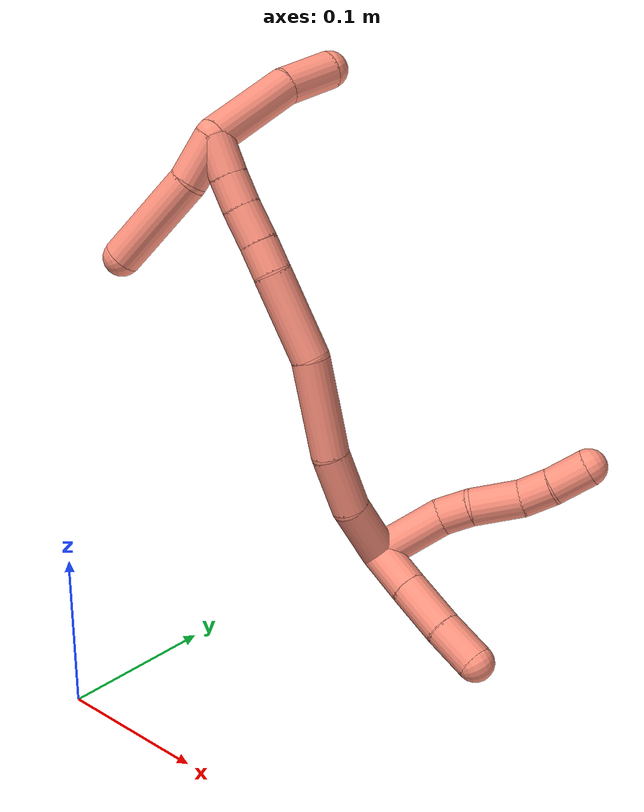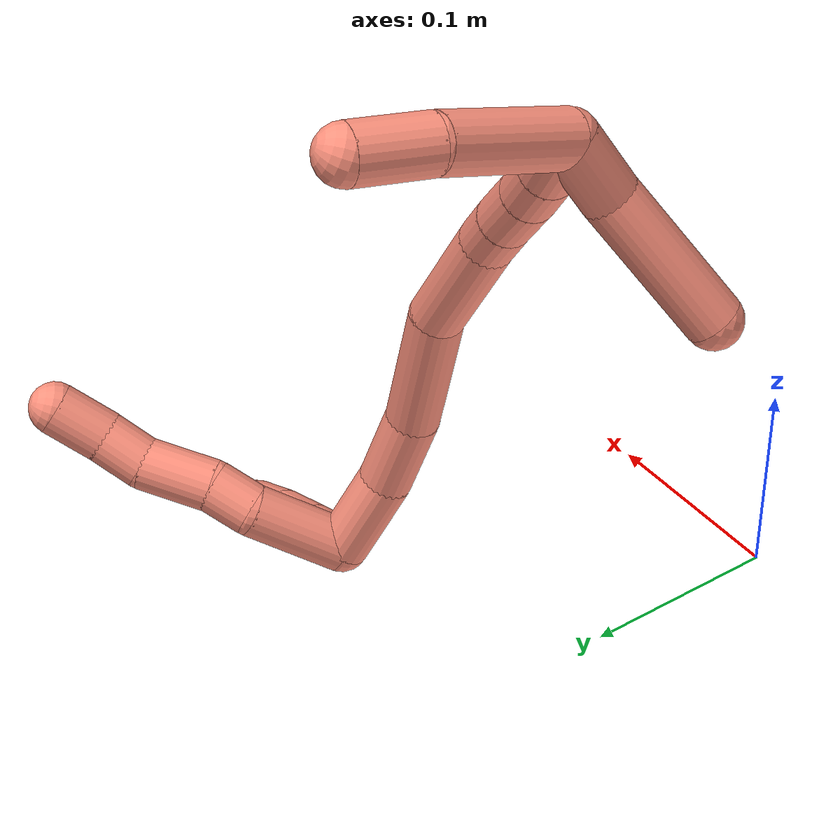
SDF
<sdf version="1.7">
 <world name="default">
  <model name="16">
   <static>0</static>
   <link name="16">
    <collision name="collision-cylinder-e_1_2_8">
     <pose>-0.003193 -0.000448 -0.023196 3.1223 -0.136762 -2.86177</pose>
     <geometry><cylinder><radius>0.0125</radius><length>0.046838</length></cylinder></geometry>
     <surface>
      <friction><ode><mu>1.16</mu><mu2>1.16</mu2><slip1>0</slip1><slip2>0</slip2></ode></friction>
      <contact><ode><kp>1e+06</kp><kd>1</kd><max_vel>0</max_vel><min_depth>0.001</min_depth></ode></contact>
     </surface>
    </collision>
    <visual name="visual-cylinder-e_1_2_8">
     <pose>-0.003193 -0.000448 -0.023196 3.1223 -0.136762 -2.86177</pose>
     <geometry><cylinder><radius>0.0125</radius><length>0.046838</length></cylinder></geometry>
     <material><ambient>1 0.576471 0.494118 1</ambient></material>
    </visual>
    <collision name="collision-cylinder-e_2_8_9">
     <pose>-0.010512 0.001 -0.055985 -2.94651 -0.399312 2.24075</pose>
     <geometry><cylinder><radius>0.0125</radius><length>0.021226</length></cylinder></geometry>
     <surface>
      <friction><ode><mu>1.16</mu><mu2>1.16</mu2><slip1>0</slip1><slip2>0</slip2></ode></friction>
      <contact><ode><kp>1e+06</kp><kd>1</kd><max_vel>0</max_vel><min_depth>0.001</min_depth></ode></contact>
     </surface>
    </collision>
    <visual name="visual-cylinder-e_2_8_9">
     <pose>-0.010512 0.001 -0.055985 -2.94651 -0.399312 2.24075</pose>
     <geometry><cylinder><radius>0.0125</radius><length>0.021226</length></cylinder></geometry>
     <material><ambient>1 0.576471 0.494118 1</ambient></material>
    </visual>
    <collision name="collision-cylinder-e_3_9_10">
     <pose>-0.018019 0.008251 -0.081208 -2.81155 -0.201826 1.09258</pose>
     <geometry><cylinder><radius>0.0125</radius><length>0.033729</length></cylinder></geometry>
     <surface>
      <friction><ode><mu>1.16</mu><mu2>1.16</mu2><slip1>0</slip1><slip2>0</slip2></ode></friction>
      <contact><ode><kp>1e+06</kp><kd>1</kd><max_vel>0</max_vel><min_depth>0.001</min_depth></ode></contact>
     </surface>
    </collision>
    <visual name="visual-cylinder-e_3_9_10">
     <pose>-0.018019 0.008251 -0.081208 -2.81155 -0.201826 1.09258</pose>
     <geometry><cylinder><radius>0.0125</radius><length>0.033729</length></cylinder></geometry>
     <material><ambient>1 0.576471 0.494118 1</ambient></material>
    </visual>
    <collision name="collision-cylinder-e_4_10_11">
     <pose>-0.025816 0.0148 -0.1068 -3.02222 -0.414668 2.58804</pose>
     <geometry><cylinder><radius>0.0125</radius><length>0.021923</length></cylinder></geometry>
     <surface>
      <friction><ode><mu>1.16</mu><mu2>1.16</mu2><slip1>0</slip1><slip2>0</slip2></ode></friction>
      <contact><ode><kp>1e+06</kp><kd>1</kd><max_vel>0</max_vel><min_depth>0.001</min_depth></ode></contact>
     </surface>
    </collision>
    <visual name="visual-cylinder-e_4_10_11">
     <pose>-0.025816 0.0148 -0.1068 -3.02222 -0.414668 2.58804</pose>
     <geometry><cylinder><radius>0.0125</radius><length>0.021923</length></cylinder></geometry>
     <material><ambient>1 0.576471 0.494118 1</ambient></material>
    </visual>
    <collision name="collision-cylinder-e_5_11_6">
     <pose>-0.034212 0.016129 -0.129285 -3.13087 -0.307673 3.07245</pose>
     <geometry><cylinder><radius>0.0125</radius><length>0.026283</length></cylinder></geometry>
     <surface>
      <friction><ode><mu>1.16</mu><mu2>1.16</mu2><slip1>0</slip1><slip2>0</slip2></ode></friction>
      <contact><ode><kp>1e+06</kp><kd>1</kd><max_vel>0</max_vel><min_depth>0.001</min_depth></ode></contact>
     </surface>
    </collision>
    <visual name="visual-cylinder-e_5_11_6">
     <pose>-0.034212 0.016129 -0.129285 -3.13087 -0.307673 3.07245</pose>
     <geometry><cylinder><radius>0.0125</radius><length>0.026283</length></cylinder></geometry>
     <material><ambient>1 0.576471 0.494118 1</ambient></material>
    </visual>
    <collision name="collision-cylinder-e_1_2_12">
     <pose>-0.007201 0.014676 -0.002184 -1.71854 -0.45186 0.521071</pose>
     <geometry><cylinder><radius>0.0125</radius><length>0.032985</length></cylinder></geometry>
     <surface>
      <friction><ode><mu>1.16</mu><mu2>1.16</mu2><slip1>0</slip1><slip2>0</slip2></ode></friction>
      <contact><ode><kp>1e+06</kp><kd>1</kd><max_vel>0</max_vel><min_depth>0.001</min_depth></ode></contact>
     </surface>
    </collision>
    <visual name="visual-cylinder-e_1_2_12">
     <pose>-0.007201 0.014676 -0.002184 -1.71854 -0.45186 0.521071</pose>
     <geometry><cylinder><radius>0.0125</radius><length>0.032985</length></cylinder></geometry>
     <material><ambient>1 0.576471 0.494118 1</ambient></material>
    </visual>
    <collision name="collision-cylinder-e_2_12_13">
     <pose>-0.022042 0.045615 -0.007151 -1.74026 -0.433619 0.510911</pose>
     <geometry><cylinder><radius>0.0125</radius><length>0.036365</length></cylinder></geometry>
     <surface>
      <friction><ode><mu>1.16</mu><mu2>1.16</mu2><slip1>0</slip1><slip2>0</slip2></ode></friction>
      <contact><ode><kp>1e+06</kp><kd>1</kd><max_vel>0</max_vel><min_depth>0.001</min_depth></ode></contact>
     </surface>
    </collision>
    <visual name="visual-cylinder-e_2_12_13">
     <pose>-0.022042 0.045615 -0.007151 -1.74026 -0.433619 0.510911</pose>
     <geometry><cylinder><radius>0.0125</radius><length>0.036365</length></cylinder></geometry>
     <material><ambient>1 0.576471 0.494118 1</ambient></material>
    </visual>
    <collision name="collision-cylinder-e_3_13_5">
     <pose>-0.03539 0.07573 -0.013156 -1.79937 -0.3817 0.47734</pose>
     <geometry><cylinder><radius>0.0125</radius><length>0.030649</length></cylinder></geometry>
     <surface>
      <friction><ode><mu>1.16</mu><mu2>1.16</mu2><slip1>0</slip1><slip2>0</slip2></ode></friction>
      <contact><ode><kp>1e+06</kp><kd>1</kd><max_vel>0</max_vel><min_depth>0.001</min_depth></ode></contact>
     </surface>
    </collision>
    <visual name="visual-cylinder-e_3_13_5">
     <pose>-0.03539 0.07573 -0.013156 -1.79937 -0.3817 0.47734</pose>
     <geometry><cylinder><radius>0.0125</radius><length>0.030649</length></cylinder></geometry>
     <material><ambient>1 0.576471 0.494118 1</ambient></material>
    </visual>
    <collision name="collision-cylinder-e_1_2_14">
     <pose>-0.012002 -0.017617 0.002282 1.44197 -0.594177 -0.525647</pose>
     <geometry><cylinder><radius>0.0125</radius><length>0.042877</length></cylinder></geometry>
     <surface>
      <friction><ode><mu>1.16</mu><mu2>1.16</mu2><slip1>0</slip1><slip2>0</slip2></ode></friction>
      <contact><ode><kp>1e+06</kp><kd>1</kd><max_vel>0</max_vel><min_depth>0.001</min_depth></ode></contact>
     </surface>
    </collision>
    <visual name="visual-cylinder-e_1_2_14">
     <pose>-0.012002 -0.017617 0.002282 1.44197 -0.594177 -0.525647</pose>
     <geometry><cylinder><radius>0.0125</radius><length>0.042877</length></cylinder></geometry>
     <material><ambient>1 0.576471 0.494118 1</ambient></material>
    </visual>
    <collision name="collision-cylinder-e_2_14_15">
     <pose>-0.03336 -0.053078 0.002814 1.66858 -0.48096 -0.528277</pose>
     <geometry><cylinder><radius>0.0125</radius><length>0.04045</length></cylinder></geometry>
     <surface>
      <friction><ode><mu>1.16</mu><mu2>1.16</mu2><slip1>0</slip1><slip2>0</slip2></ode></friction>
      <contact><ode><kp>1e+06</kp><kd>1</kd><max_vel>0</max_vel><min_depth>0.001</min_depth></ode></contact>
     </surface>
    </collision>
    <visual name="visual-cylinder-e_2_14_15">
     <pose>-0.03336 -0.053078 0.002814 1.66858 -0.48096 -0.528277</pose>
     <geometry><cylinder><radius>0.0125</radius><length>0.04045</length></cylinder></geometry>
     <material><ambient>1 0.576471 0.494118 1</ambient></material>
    </visual>
    <collision name="collision-cylinder-e_3_15_16">
     <pose>-0.055126 -0.100168 -0.007077 1.84227 -0.388051 -0.506229</pose>
     <geometry><cylinder><radius>0.0125</radius><length>0.06559</length></cylinder></geometry>
     <surface>
      <friction><ode><mu>1.16</mu><mu2>1.16</mu2><slip1>0</slip1><slip2>0</slip2></ode></friction>
      <contact><ode><kp>1e+06</kp><kd>1</kd><max_vel>0</max_vel><min_depth>0.001</min_depth></ode></contact>
     </surface>
    </collision>
    <visual name="visual-cylinder-e_3_15_16">
     <pose>-0.055126 -0.100168 -0.007077 1.84227 -0.388051 -0.506229</pose>
     <geometry><cylinder><radius>0.0125</radius><length>0.06559</length></cylinder></geometry>
     <material><ambient>1 0.576471 0.494118 1</ambient></material>
    </visual>
    <collision name="collision-cylinder-e_4_16_17">
     <pose>-0.073293 -0.158087 -0.016999 1.63286 -0.197811 -0.210394</pose>
     <geometry><cylinder><radius>0.0125</radius><length>0.058602</length></cylinder></geometry>
     <surface>
      <friction><ode><mu>1.16</mu><mu2>1.16</mu2><slip1>0</slip1><slip2>0</slip2></ode></friction>
      <contact><ode><kp>1e+06</kp><kd>1</kd><max_vel>0</max_vel><min_depth>0.001</min_depth></ode></contact>
     </surface>
    </collision>
    <visual name="visual-cylinder-e_4_16_17">
     <pose>-0.073293 -0.158087 -0.016999 1.63286 -0.197811 -0.210394</pose>
     <geometry><cylinder><radius>0.0125</radius><length>0.058602</length></cylinder></geometry>
     <material><ambient>1 0.576471 0.494118 1</ambient></material>
    </visual>
    <collision name="collision-cylinder-e_5_17_18">
     <pose>-0.079646 -0.19706 -0.019584 1.64861 -0.057411 -0.062059</pose>
     <geometry><cylinder><radius>0.0125</radius><length>0.020694</length></cylinder></geometry>
     <surface>
      <friction><ode><mu>1.16</mu><mu2>1.16</mu2><slip1>0</slip1><slip2>0</slip2></ode></friction>
      <contact><ode><kp>1e+06</kp><kd>1</kd><max_vel>0</max_vel><min_depth>0.001</min_depth></ode></contact>
     </surface>
    </collision>
    <visual name="visual-cylinder-e_5_17_18">
     <pose>-0.079646 -0.19706 -0.019584 1.64861 -0.057411 -0.062059</pose>
     <geometry><cylinder><radius>0.0125</radius><length>0.020694</length></cylinder></geometry>
     <material><ambient>1 0.576471 0.494118 1</ambient></material>
    </visual>
    <collision name="collision-cylinder-e_6_18_19">
     <pose>-0.08073 -0.219535 -0.020979 1.6194 -0.040207 -0.04221</pose>
     <geometry><cylinder><radius>0.0125</radius><length>0.024401</length></cylinder></geometry>
     <surface>
      <friction><ode><mu>1.16</mu><mu2>1.16</mu2><slip1>0</slip1><slip2>0</slip2></ode></friction>
      <contact><ode><kp>1e+06</kp><kd>1</kd><max_vel>0</max_vel><min_depth>0.001</min_depth></ode></contact>
     </surface>
    </collision>
    <visual name="visual-cylinder-e_6_18_19">
     <pose>-0.08073 -0.219535 -0.020979 1.6194 -0.040207 -0.04221</pose>
     <geometry><cylinder><radius>0.0125</radius><length>0.024401</length></cylinder></geometry>
     <material><ambient>1 0.576471 0.494118 1</ambient></material>
    </visual>
    <collision name="collision-cylinder-e_7_19_20">
     <pose>-0.081679 -0.242161 -0.022631 1.67186 -0.043629 -0.048275</pose>
     <geometry><cylinder><radius>0.0125</radius><length>0.021025</length></cylinder></geometry>
     <surface>
      <friction><ode><mu>1.16</mu><mu2>1.16</mu2><slip1>0</slip1><slip2>0</slip2></ode></friction>
      <contact><ode><kp>1e+06</kp><kd>1</kd><max_vel>0</max_vel><min_depth>0.001</min_depth></ode></contact>
     </surface>
    </collision>
    <visual name="visual-cylinder-e_7_19_20">
     <pose>-0.081679 -0.242161 -0.022631 1.67186 -0.043629 -0.048275</pose>
     <geometry><cylinder><radius>0.0125</radius><length>0.021025</length></cylinder></geometry>
     <material><ambient>1 0.576471 0.494118 1</ambient></material>
    </visual>
    <collision name="collision-cylinder-e_8_20_1">
     <pose>-0.082903 -0.265632 -0.025574 1.71446 -0.058124 -0.067131</pose>
     <geometry><cylinder><radius>0.0125</radius><length>0.026361</length></cylinder></geometry>
     <surface>
      <friction><ode><mu>1.16</mu><mu2>1.16</mu2><slip1>0</slip1><slip2>0</slip2></ode></friction>
      <contact><ode><kp>1e+06</kp><kd>1</kd><max_vel>0</max_vel><min_depth>0.001</min_depth></ode></contact>
     </surface>
    </collision>
    <visual name="visual-cylinder-e_8_20_1">
     <pose>-0.082903 -0.265632 -0.025574 1.71446 -0.058124 -0.067131</pose>
     <geometry><cylinder><radius>0.0125</radius><length>0.026361</length></cylinder></geometry>
     <material><ambient>1 0.576471 0.494118 1</ambient></material>
    </visual>
    <collision name="collision-cylinder-e_1_1_21">
     <pose>-0.078676 -0.270921 -0.014223 -0.528842 0.314858 -0.08591</pose>
     <geometry><cylinder><radius>0.0125</radius><length>0.032243</length></cylinder></geometry>
     <surface>
      <friction><ode><mu>1.16</mu><mu2>1.16</mu2><slip1>0</slip1><slip2>0</slip2></ode></friction>
      <contact><ode><kp>1e+06</kp><kd>1</kd><max_vel>0</max_vel><min_depth>0.001</min_depth></ode></contact>
     </surface>
    </collision>
    <visual name="visual-cylinder-e_1_1_21">
     <pose>-0.078676 -0.270921 -0.014223 -0.528842 0.314858 -0.08591</pose>
     <geometry><cylinder><radius>0.0125</radius><length>0.032243</length></cylinder></geometry>
     <material><ambient>1 0.576471 0.494118 1</ambient></material>
    </visual>
    <collision name="collision-cylinder-e_2_21_4">
     <pose>-0.058711 -0.254127 0.02802 -0.302715 0.457752 -0.071034</pose>
     <geometry><cylinder><radius>0.0125</radius><length>0.067757</length></cylinder></geometry>
     <surface>
      <friction><ode><mu>1.16</mu><mu2>1.16</mu2><slip1>0</slip1><slip2>0</slip2></ode></friction>
      <contact><ode><kp>1e+06</kp><kd>1</kd><max_vel>0</max_vel><min_depth>0.001</min_depth></ode></contact>
     </surface>
    </collision>
    <visual name="visual-cylinder-e_2_21_4">
     <pose>-0.058711 -0.254127 0.02802 -0.302715 0.457752 -0.071034</pose>
     <geometry><cylinder><radius>0.0125</radius><length>0.067757</length></cylinder></geometry>
     <material><ambient>1 0.576471 0.494118 1</ambient></material>
    </visual>
    <collision name="collision-cylinder-e_1_1_22">
     <pose>-0.071037 -0.28481 -0.056279 2.9312 0.404931 2.19146</pose>
     <geometry><cylinder><radius>0.0125</radius><length>0.064127</length></cylinder></geometry>
     <surface>
      <friction><ode><mu>1.16</mu><mu2>1.16</mu2><slip1>0</slip1><slip2>0</slip2></ode></friction>
      <contact><ode><kp>1e+06</kp><kd>1</kd><max_vel>0</max_vel><min_depth>0.001</min_depth></ode></contact>
     </surface>
    </collision>
    <visual name="visual-cylinder-e_1_1_22">
     <pose>-0.071037 -0.28481 -0.056279 2.9312 0.404931 2.19146</pose>
     <geometry><cylinder><radius>0.0125</radius><length>0.064127</length></cylinder></geometry>
     <material><ambient>1 0.576471 0.494118 1</ambient></material>
    </visual>
    <collision name="collision-cylinder-e_2_22_3">
     <pose>-0.051387 -0.29042 -0.101597 -3.10859 0.402005 -2.97996</pose>
     <geometry><cylinder><radius>0.0125</radius><length>0.035873</length></cylinder></geometry>
     <surface>
      <friction><ode><mu>1.16</mu><mu2>1.16</mu2><slip1>0</slip1><slip2>0</slip2></ode></friction>
      <contact><ode><kp>1e+06</kp><kd>1</kd><max_vel>0</max_vel><min_depth>0.001</min_depth></ode></contact>
     </surface>
    </collision>
    <visual name="visual-cylinder-e_2_22_3">
     <pose>-0.051387 -0.29042 -0.101597 -3.10859 0.402005 -2.97996</pose>
     <geometry><cylinder><radius>0.0125</radius><length>0.035873</length></cylinder></geometry>
     <material><ambient>1 0.576471 0.494118 1</ambient></material>
    </visual>
    <collision name="collision-sphere-3">
     <pose>-0.044369 -0.289875 -0.118095 0 -0 0</pose>
     <geometry><sphere><radius>0.0125</radius></sphere></geometry>
     <surface>
      <friction><ode><mu>1.16</mu><mu2>1.16</mu2><slip1>0</slip1><slip2>0</slip2></ode></friction>
      <contact><ode><kp>1e+06</kp><kd>1</kd><max_vel>0</max_vel><min_depth>0.001</min_depth></ode></contact>
     </surface>
    </collision>
    <visual name="visual-sphere-3">
     <pose>-0.044369 -0.289875 -0.118095 0 -0 0</pose>
     <geometry><sphere><radius>0.0125</radius></sphere></geometry>
     <material><ambient>1 0.576471 0.494118 1</ambient></material>
    </visual>
    <collision name="collision-sphere-22">
     <pose>-0.058405 -0.290965 -0.0851 0 -0 0</pose>
     <geometry><sphere><radius>0.0125</radius></sphere></geometry>
     <surface>
      <friction><ode><mu>1.16</mu><mu2>1.16</mu2><slip1>0</slip1><slip2>0</slip2></ode></friction>
      <contact><ode><kp>1e+06</kp><kd>1</kd><max_vel>0</max_vel><min_depth>0.001</min_depth></ode></contact>
     </surface>
    </collision>
    <visual name="visual-sphere-22">
     <pose>-0.058405 -0.290965 -0.0851 0 -0 0</pose>
     <geometry><sphere><radius>0.0125</radius></sphere></geometry>
     <material><ambient>1 0.576471 0.494118 1</ambient></material>
    </visual>
    <collision name="collision-sphere-4">
     <pose>-0.043739 -0.245067 0.057029 0 -0 0</pose>
     <geometry><sphere><radius>0.0125</radius></sphere></geometry>
     <surface>
      <friction><ode><mu>1.16</mu><mu2>1.16</mu2><slip1>0</slip1><slip2>0</slip2></ode></friction>
      <contact><ode><kp>1e+06</kp><kd>1</kd><max_vel>0</max_vel><min_depth>0.001</min_depth></ode></contact>
     </surface>
    </collision>
    <visual name="visual-sphere-4">
     <pose>-0.043739 -0.245067 0.057029 0 -0 0</pose>
     <geometry><sphere><radius>0.0125</radius></sphere></geometry>
     <material><ambient>1 0.576471 0.494118 1</ambient></material>
    </visual>
    <collision name="collision-sphere-21">
     <pose>-0.073683 -0.263187 -0.000989 0 -0 0</pose>
     <geometry><sphere><radius>0.0125</radius></sphere></geometry>
     <surface>
      <friction><ode><mu>1.16</mu><mu2>1.16</mu2><slip1>0</slip1><slip2>0</slip2></ode></friction>
      <contact><ode><kp>1e+06</kp><kd>1</kd><max_vel>0</max_vel><min_depth>0.001</min_depth></ode></contact>
     </surface>
    </collision>
    <visual name="visual-sphere-21">
     <pose>-0.073683 -0.263187 -0.000989 0 -0 0</pose>
     <geometry><sphere><radius>0.0125</radius></sphere></geometry>
     <material><ambient>1 0.576471 0.494118 1</ambient></material>
    </visual>
    <collision name="collision-sphere-1">
     <pose>-0.083668 -0.278655 -0.027458 0 -0 0</pose>
     <geometry><sphere><radius>0.0125</radius></sphere></geometry>
     <surface>
      <friction><ode><mu>1.16</mu><mu2>1.16</mu2><slip1>0</slip1><slip2>0</slip2></ode></friction>
      <contact><ode><kp>1e+06</kp><kd>1</kd><max_vel>0</max_vel><min_depth>0.001</min_depth></ode></contact>
     </surface>
    </collision>
    <visual name="visual-sphere-1">
     <pose>-0.083668 -0.278655 -0.027458 0 -0 0</pose>
     <geometry><sphere><radius>0.0125</radius></sphere></geometry>
     <material><ambient>1 0.576471 0.494118 1</ambient></material>
    </visual>
    <collision name="collision-sphere-6">
     <pose>-0.038192 0.016264 -0.141809 0 -0 0</pose>
     <geometry><sphere><radius>0.0125</radius></sphere></geometry>
     <surface>
      <friction><ode><mu>1.16</mu><mu2>1.16</mu2><slip1>0</slip1><slip2>0</slip2></ode></friction>
      <contact><ode><kp>1e+06</kp><kd>1</kd><max_vel>0</max_vel><min_depth>0.001</min_depth></ode></contact>
     </surface>
    </collision>
    <visual name="visual-sphere-6">
     <pose>-0.038192 0.016264 -0.141809 0 -0 0</pose>
     <geometry><sphere><radius>0.0125</radius></sphere></geometry>
     <material><ambient>1 0.576471 0.494118 1</ambient></material>
    </visual>
    <collision name="collision-sphere-11">
     <pose>-0.030232 0.015995 -0.116761 0 -0 0</pose>
     <geometry><sphere><radius>0.0125</radius></sphere></geometry>
     <surface>
      <friction><ode><mu>1.16</mu><mu2>1.16</mu2><slip1>0</slip1><slip2>0</slip2></ode></friction>
      <contact><ode><kp>1e+06</kp><kd>1</kd><max_vel>0</max_vel><min_depth>0.001</min_depth></ode></contact>
     </surface>
    </collision>
    <visual name="visual-sphere-11">
     <pose>-0.030232 0.015995 -0.116761 0 -0 0</pose>
     <geometry><sphere><radius>0.0125</radius></sphere></geometry>
     <material><ambient>1 0.576471 0.494118 1</ambient></material>
    </visual>
    <collision name="collision-sphere-10">
     <pose>-0.0214 0.013605 -0.096839 0 -0 0</pose>
     <geometry><sphere><radius>0.0125</radius></sphere></geometry>
     <surface>
      <friction><ode><mu>1.16</mu><mu2>1.16</mu2><slip1>0</slip1><slip2>0</slip2></ode></friction>
      <contact><ode><kp>1e+06</kp><kd>1</kd><max_vel>0</max_vel><min_depth>0.001</min_depth></ode></contact>
     </surface>
    </collision>
    <visual name="visual-sphere-10">
     <pose>-0.0214 0.013605 -0.096839 0 -0 0</pose>
     <geometry><sphere><radius>0.0125</radius></sphere></geometry>
     <material><ambient>1 0.576471 0.494118 1</ambient></material>
    </visual>
    <collision name="collision-sphere-9">
     <pose>-0.014638 0.002896 -0.065578 0 -0 0</pose>
     <geometry><sphere><radius>0.0125</radius></sphere></geometry>
     <surface>
      <friction><ode><mu>1.16</mu><mu2>1.16</mu2><slip1>0</slip1><slip2>0</slip2></ode></friction>
      <contact><ode><kp>1e+06</kp><kd>1</kd><max_vel>0</max_vel><min_depth>0.001</min_depth></ode></contact>
     </surface>
    </collision>
    <visual name="visual-sphere-9">
     <pose>-0.014638 0.002896 -0.065578 0 -0 0</pose>
     <geometry><sphere><radius>0.0125</radius></sphere></geometry>
     <material><ambient>1 0.576471 0.494118 1</ambient></material>
    </visual>
    <collision name="collision-sphere-2">
     <geometry><sphere><radius>0.0125</radius></sphere></geometry>
     <surface>
      <friction><ode><mu>1.16</mu><mu2>1.16</mu2><slip1>0</slip1><slip2>0</slip2></ode></friction>
      <contact><ode><kp>1e+06</kp><kd>1</kd><max_vel>0</max_vel><min_depth>0.001</min_depth></ode></contact>
     </surface>
    </collision>
    <visual name="visual-sphere-2">
     <geometry><sphere><radius>0.0125</radius></sphere></geometry>
     <material><ambient>1 0.576471 0.494118 1</ambient></material>
    </visual>
    <collision name="collision-sphere-19">
     <pose>-0.08122 -0.231712 -0.021571 0 -0 0</pose>
     <geometry><sphere><radius>0.0125</radius></sphere></geometry>
     <surface>
      <friction><ode><mu>1.16</mu><mu2>1.16</mu2><slip1>0</slip1><slip2>0</slip2></ode></friction>
      <contact><ode><kp>1e+06</kp><kd>1</kd><max_vel>0</max_vel><min_depth>0.001</min_depth></ode></contact>
     </surface>
    </collision>
    <visual name="visual-sphere-19">
     <pose>-0.08122 -0.231712 -0.021571 0 -0 0</pose>
     <geometry><sphere><radius>0.0125</radius></sphere></geometry>
     <material><ambient>1 0.576471 0.494118 1</ambient></material>
    </visual>
    <collision name="collision-sphere-8">
     <pose>-0.006386 -0.000895 -0.046392 0 -0 0</pose>
     <geometry><sphere><radius>0.0125</radius></sphere></geometry>
     <surface>
      <friction><ode><mu>1.16</mu><mu2>1.16</mu2><slip1>0</slip1><slip2>0</slip2></ode></friction>
      <contact><ode><kp>1e+06</kp><kd>1</kd><max_vel>0</max_vel><min_depth>0.001</min_depth></ode></contact>
     </surface>
    </collision>
    <visual name="visual-sphere-8">
     <pose>-0.006386 -0.000895 -0.046392 0 -0 0</pose>
     <geometry><sphere><radius>0.0125</radius></sphere></geometry>
     <material><ambient>1 0.576471 0.494118 1</ambient></material>
    </visual>
    <collision name="collision-sphere-12">
     <pose>-0.014403 0.029351 -0.004368 0 -0 0</pose>
     <geometry><sphere><radius>0.0125</radius></sphere></geometry>
     <surface>
      <friction><ode><mu>1.16</mu><mu2>1.16</mu2><slip1>0</slip1><slip2>0</slip2></ode></friction>
      <contact><ode><kp>1e+06</kp><kd>1</kd><max_vel>0</max_vel><min_depth>0.001</min_depth></ode></contact>
     </surface>
    </collision>
    <visual name="visual-sphere-12">
     <pose>-0.014403 0.029351 -0.004368 0 -0 0</pose>
     <geometry><sphere><radius>0.0125</radius></sphere></geometry>
     <material><ambient>1 0.576471 0.494118 1</ambient></material>
    </visual>
    <collision name="collision-sphere-13">
     <pose>-0.029682 0.061879 -0.009934 0 -0 0</pose>
     <geometry><sphere><radius>0.0125</radius></sphere></geometry>
     <surface>
      <friction><ode><mu>1.16</mu><mu2>1.16</mu2><slip1>0</slip1><slip2>0</slip2></ode></friction>
      <contact><ode><kp>1e+06</kp><kd>1</kd><max_vel>0</max_vel><min_depth>0.001</min_depth></ode></contact>
     </surface>
    </collision>
    <visual name="visual-sphere-13">
     <pose>-0.029682 0.061879 -0.009934 0 -0 0</pose>
     <geometry><sphere><radius>0.0125</radius></sphere></geometry>
     <material><ambient>1 0.576471 0.494118 1</ambient></material>
    </visual>
    <collision name="collision-sphere-5">
     <pose>-0.041099 0.089582 -0.016379 0 -0 0</pose>
     <geometry><sphere><radius>0.0125</radius></sphere></geometry>
     <surface>
      <friction><ode><mu>1.16</mu><mu2>1.16</mu2><slip1>0</slip1><slip2>0</slip2></ode></friction>
      <contact><ode><kp>1e+06</kp><kd>1</kd><max_vel>0</max_vel><min_depth>0.001</min_depth></ode></contact>
     </surface>
    </collision>
    <visual name="visual-sphere-5">
     <pose>-0.041099 0.089582 -0.016379 0 -0 0</pose>
     <geometry><sphere><radius>0.0125</radius></sphere></geometry>
     <material><ambient>1 0.576471 0.494118 1</ambient></material>
    </visual>
    <collision name="collision-sphere-14">
     <pose>-0.024003 -0.035234 0.004564 0 -0 0</pose>
     <geometry><sphere><radius>0.0125</radius></sphere></geometry>
     <surface>
      <friction><ode><mu>1.16</mu><mu2>1.16</mu2><slip1>0</slip1><slip2>0</slip2></ode></friction>
      <contact><ode><kp>1e+06</kp><kd>1</kd><max_vel>0</max_vel><min_depth>0.001</min_depth></ode></contact>
     </surface>
    </collision>
    <visual name="visual-sphere-14">
     <pose>-0.024003 -0.035234 0.004564 0 -0 0</pose>
     <geometry><sphere><radius>0.0125</radius></sphere></geometry>
     <material><ambient>1 0.576471 0.494118 1</ambient></material>
    </visual>
    <collision name="collision-sphere-15">
     <pose>-0.042717 -0.070923 0.001063 0 -0 0</pose>
     <geometry><sphere><radius>0.0125</radius></sphere></geometry>
     <surface>
      <friction><ode><mu>1.16</mu><mu2>1.16</mu2><slip1>0</slip1><slip2>0</slip2></ode></friction>
      <contact><ode><kp>1e+06</kp><kd>1</kd><max_vel>0</max_vel><min_depth>0.001</min_depth></ode></contact>
     </surface>
    </collision>
    <visual name="visual-sphere-15">
     <pose>-0.042717 -0.070923 0.001063 0 -0 0</pose>
     <geometry><sphere><radius>0.0125</radius></sphere></geometry>
     <material><ambient>1 0.576471 0.494118 1</ambient></material>
    </visual>
    <collision name="collision-sphere-16">
     <pose>-0.067535 -0.129413 -0.015217 0 -0 0</pose>
     <geometry><sphere><radius>0.0125</radius></sphere></geometry>
     <surface>
      <friction><ode><mu>1.16</mu><mu2>1.16</mu2><slip1>0</slip1><slip2>0</slip2></ode></friction>
      <contact><ode><kp>1e+06</kp><kd>1</kd><max_vel>0</max_vel><min_depth>0.001</min_depth></ode></contact>
     </surface>
    </collision>
    <visual name="visual-sphere-16">
     <pose>-0.067535 -0.129413 -0.015217 0 -0 0</pose>
     <geometry><sphere><radius>0.0125</radius></sphere></geometry>
     <material><ambient>1 0.576471 0.494118 1</ambient></material>
    </visual>
    <collision name="collision-sphere-17">
     <pose>-0.079052 -0.186762 -0.018781 0 -0 0</pose>
     <geometry><sphere><radius>0.0125</radius></sphere></geometry>
     <surface>
      <friction><ode><mu>1.16</mu><mu2>1.16</mu2><slip1>0</slip1><slip2>0</slip2></ode></friction>
      <contact><ode><kp>1e+06</kp><kd>1</kd><max_vel>0</max_vel><min_depth>0.001</min_depth></ode></contact>
     </surface>
    </collision>
    <visual name="visual-sphere-17">
     <pose>-0.079052 -0.186762 -0.018781 0 -0 0</pose>
     <geometry><sphere><radius>0.0125</radius></sphere></geometry>
     <material><ambient>1 0.576471 0.494118 1</ambient></material>
    </visual>
    <collision name="collision-sphere-18">
     <pose>-0.080239 -0.207359 -0.020387 0 -0 0</pose>
     <geometry><sphere><radius>0.0125</radius></sphere></geometry>
     <surface>
      <friction><ode><mu>1.16</mu><mu2>1.16</mu2><slip1>0</slip1><slip2>0</slip2></ode></friction>
      <contact><ode><kp>1e+06</kp><kd>1</kd><max_vel>0</max_vel><min_depth>0.001</min_depth></ode></contact>
     </surface>
    </collision>
    <visual name="visual-sphere-18">
     <pose>-0.080239 -0.207359 -0.020387 0 -0 0</pose>
     <geometry><sphere><radius>0.0125</radius></sphere></geometry>
     <material><ambient>1 0.576471 0.494118 1</ambient></material>
    </visual>
    <collision name="collision-sphere-20">
     <pose>-0.082137 -0.25261 -0.02369 0 -0 0</pose>
     <geometry><sphere><radius>0.0125</radius></sphere></geometry>
     <surface>
      <friction><ode><mu>1.16</mu><mu2>1.16</mu2><slip1>0</slip1><slip2>0</slip2></ode></friction>
      <contact><ode><kp>1e+06</kp><kd>1</kd><max_vel>0</max_vel><min_depth>0.001</min_depth></ode></contact>
     </surface>
    </collision>
    <visual name="visual-sphere-20">
     <pose>-0.082137 -0.25261 -0.02369 0 -0 0</pose>
     <geometry><sphere><radius>0.0125</radius></sphere></geometry>
     <material><ambient>1 0.576471 0.494118 1</ambient></material>
    </visual>
    <inertial>
     <pose>-0.046372 -0.119214 -0.027491 0 -0 0</pose>
     <mass>0.75</mass>
     <inertia><ixx>6.3e-05</ixx><ixy>0</ixy><ixz>0</ixz><iyy>5.7e-05</iyy><iyz>0</iyz><izz>3.5e-05</izz></inertia>
    </inertial>
   </link>
   <pose>0.076686 0.196465 0.05253 -2.03347 0.534687 2.39524</pose>
  </model>
 </world>
</sdf>
